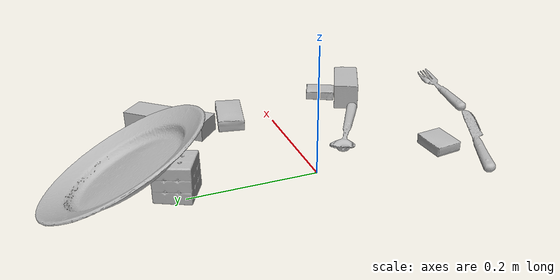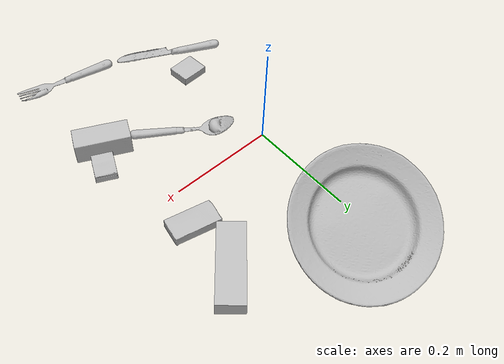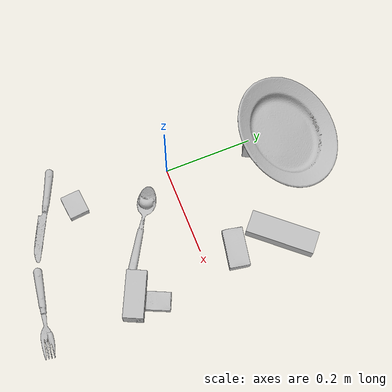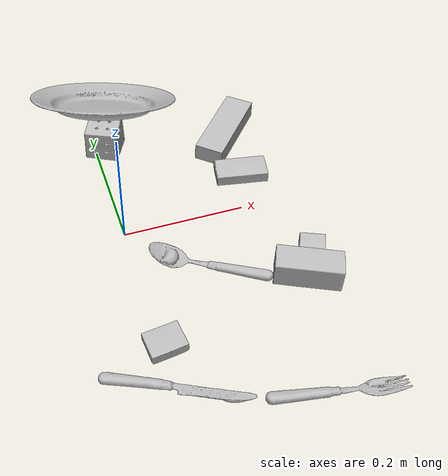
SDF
<sdf version="1.4">
  <world name="default">
    <light name="light1" type="point">
      <pose>0 0 1 0 0 0</pose>
      <diffuse>3 3 3 1</diffuse>
      <specular>3 3 3 1</specular>
    </light>
    <light name="light2" type="point">
      <pose>0 0.5 2 0 0 0</pose>
      <diffuse>1 1 1 1</diffuse>
      <specular>1 1 1 1</specular>
    </light>
    <light name="light3" type="point">
      <pose>0 0.5 2 0 0 0</pose>
      <diffuse>3 3 3 1</diffuse>
      <specular>3 3 3 1</specular>
    </light>
    <scene>
      <ambient>0.7 0.7 0.7</ambient>
    </scene>
    <model name="box11">
      <link name="link_box11">
        <collision name="default">
          <geometry>
            <mesh>
              <uri>model://pudding_box/collision_meshes/collision.obj</uri>
              <scale>0.5 0.5 0.5</scale>
            </mesh>
          </geometry>
          <surface>
            <friction>
              <ode>
                <mu>0.5</mu>
                <mu2>0.5</mu2>
              </ode>
            </friction>
          <contact>
        <ode>
            <max_vel>0</max_vel>
            <min_depth>0.0001</min_depth>
            <kp>1e8</kp>
        </ode>
    </contact></surface>
        </collision>
        <visual name="default">
          <geometry>
            <mesh>
              <uri>model://pudding_box/visual_meshes/visual.dae</uri>
              <scale>0.5 0.5 0.5</scale>
            </mesh>
          </geometry>
        </visual>
        <inertial>
          <mass>0.05641884729266167</mass>
          <pose>0.00024474109522998333 0.000403394311433658 -0.00025944141088984907 0.005213101771016666 -0.006603799659696515 0.020079828883224148</pose>
          <inertia>
            <ixx>1.5944652e-05</ixx>
            <iyy>1.0727675e-05</iyy>
            <izz>2.3546443e-05</izz>
            <ixy>0</ixy>
            <ixz>0</ixz>
            <iyz>0</iyz>
          </inertia>
        </inertial>
      </link>
      <pose>0.0033720319624990225 -0.21708613634109497 0.009862902574241161 0.02234852671509294 -0.011391733523686795 -1.478145894905893</pose>
    </model>
    <model name="box12">
      <link name="link_box12">
        <collision name="default">
          <geometry>
            <mesh>
              <uri>model://wood_block/collision_meshes/collision.obj</uri>
              <scale>0.5 0.5 0.5</scale>
            </mesh>
          </geometry>
          <surface>
            <friction>
              <ode>
                <mu>0.5</mu>
                <mu2>0.5</mu2>
              </ode>
            </friction>
          <contact>
        <ode>
            <max_vel>0</max_vel>
            <min_depth>0.0001</min_depth>
            <kp>1e8</kp>
        </ode>
    </contact></surface>
        </collision>
        <visual name="default">
          <geometry>
            <mesh>
              <uri>model://wood_block/visual_meshes/visual.dae</uri>
              <scale>0.5 0.5 0.5</scale>
            </mesh>
          </geometry>
        </visual>
        <inertial>
          <mass>0.1445801854133606</mass>
          <pose>-2.906657982748584e-06 -0.000285404734313488 0.00013204291462898254 -0.052208162951624955 -0.0051926954609686745 -0.006861377578377277</pose>
          <inertia>
            <ixx>4.836754e-05</ixx>
            <iyy>0.0001527931</iyy>
            <izz>0.00015222155</izz>
            <ixy>0</ixy>
            <ixz>0</ixz>
            <iyz>0</iyz>
          </inertia>
        </inertial>
      </link>
      <pose>0.244312584400177 -0.16605478525161743 0.022629264742136 -0.005208484346942467 0.0057187131873377315 -0.4402943496212677</pose>
    </model>
    <model name="box13">
      <link name="link_box13">
        <collision name="default">
          <geometry>
            <mesh>
              <uri>model://sugar_box/collision_meshes/collision.obj</uri>
              <scale>0.5 0.5 0.5</scale>
            </mesh>
          </geometry>
          <surface>
            <friction>
              <ode>
                <mu>0.5</mu>
                <mu2>0.5</mu2>
              </ode>
            </friction>
          <contact>
        <ode>
            <max_vel>0</max_vel>
            <min_depth>0.0001</min_depth>
            <kp>1e8</kp>
        </ode>
    </contact></surface>
        </collision>
        <visual name="default">
          <geometry>
            <mesh>
              <uri>model://sugar_box/visual_meshes/visual.dae</uri>
              <scale>0.5 0.5 0.5</scale>
            </mesh>
          </geometry>
        </visual>
        <inertial>
          <mass>0.1187032163143158</mass>
          <pose>0.0005171863595023751 1.924554817378521e-05 -0.00018182402709499002 -0.0004046259512710581 0.0010506635216588768 0.002615378556274426</pose>
          <inertia>
            <ixx>2.4725794e-05</ixx>
            <iyy>7.991886e-05</iyy>
            <izz>9.567241e-05</izz>
            <ixy>0</ixy>
            <ixz>0</ixz>
            <iyz>0</iyz>
          </inertia>
        </inertial>
      </link>
      <pose>0.22500395774841309 0.07174714654684067 0.011399303562939167 0.000774887179638185 -0.023433145629032894 -0.1998013896401678</pose>
    </model>
    <model name="box21">
      <link name="link_box21">
        <collision name="default">
          <geometry>
            <mesh>
              <uri>model://jenga/collision_meshes/collision.obj</uri>
              <scale>1.0 1.0 1.0</scale>
            </mesh>
          </geometry>
          <surface>
            <friction>
              <ode>
                <mu>0.5</mu>
                <mu2>0.5</mu2>
              </ode>
            </friction>
          <contact>
        <ode>
            <max_vel>0</max_vel>
            <min_depth>0.0001</min_depth>
            <kp>1e8</kp>
        </ode>
    </contact></surface>
        </collision>
        <visual name="default">
          <geometry>
            <mesh>
              <uri>model://jenga/visual_meshes/visual.dae</uri>
              <scale>1.0 1.0 1.0</scale>
            </mesh>
          </geometry>
        </visual>
        <inertial>
          <mass>0.20898528397083282</mass>
          <pose>-2.502855807051674e-07 -0.00010250010382151231 -4.092339804628864e-05 0.0 -7.342154049184251e-07 0.0</pose>
          <inertia>
            <ixx>5.7831294e-05</ixx>
            <iyy>0.0003918633</iyy>
            <izz>0.00041834736</izz>
            <ixy>0</ixy>
            <ixz>0</ixz>
            <iyz>0</iyz>
          </inertia>
        </inertial>
      </link>
      <pose>0.23266902565956116 0.17647463083267212 0.01499999687075615 -6.576227509029871e-09 -8.86422711490734e-10 -2.2944876772374707</pose>
    </model>
    <model name="box22">
      <link name="link_box22">
        <collision name="default">
          <geometry>
            <mesh>
              <uri>model://rubiks_cube/collision_meshes/collision.obj</uri>
              <scale>1.0 1.0 1.0</scale>
            </mesh>
          </geometry>
          <surface>
            <friction>
              <ode>
                <mu>0.5</mu>
                <mu2>0.5</mu2>
              </ode>
            </friction>
          <contact>
        <ode>
            <max_vel>0</max_vel>
            <min_depth>0.0001</min_depth>
            <kp>1e8</kp>
        </ode>
    </contact></surface>
        </collision>
        <visual name="default">
          <geometry>
            <mesh>
              <uri>model://rubiks_cube/visual_meshes/visual.dae</uri>
              <scale>1.0 1.0 1.0</scale>
            </mesh>
          </geometry>
        </visual>
        <inertial>
          <mass>0.28698527812957764</mass>
          <pose>2.6721041649580002e-05 5.2569666877388954e-05 -7.2643156272533815e-06 -0.05467256881712973 -0.09813902151902686 -0.034455808755049874</pose>
          <inertia>
            <ixx>0.00015857864</ixx>
            <iyy>0.00015783912</iyy>
            <izz>0.00015989273</izz>
            <ixy>0</ixy>
            <ixz>0</ixz>
            <iyz>0</iyz>
          </inertia>
        </inertial>
      </link>
      <pose>0.017894180491566658 0.20775067806243896 0.028679024428129196 1.624878965857694e-06 -1.2698486176618527e-06 -2.0030197676334462</pose>
    </model>
    <model name="box23">
      <link name="link_box23">
        <collision name="default">
          <geometry>
            <mesh>
              <uri>model://cracker_box/collision_meshes/collision.obj</uri>
              <scale>0.25 0.25 0.25</scale>
            </mesh>
          </geometry>
          <surface>
            <friction>
              <ode>
                <mu>0.5</mu>
                <mu2>0.5</mu2>
              </ode>
            </friction>
          <contact>
        <ode>
            <max_vel>0</max_vel>
            <min_depth>0.0001</min_depth>
            <kp>1e8</kp>
        </ode>
    </contact></surface>
        </collision>
        <visual name="default">
          <geometry>
            <mesh>
              <uri>model://cracker_box/visual_meshes/visual.dae</uri>
              <scale>0.25 0.25 0.25</scale>
            </mesh>
          </geometry>
        </visual>
        <inertial>
          <mass>0.04468085244297981</mass>
          <pose>0.00023660414444748312 6.358561222441494e-05 -0.0004257383698131889 -0.0003162076226327385 -0.011106488669128663 0.0025467943033026423</pose>
          <inertia>
            <ixx>7.10301e-06</ixx>
            <iyy>1.1728463e-05</iyy>
            <izz>1.6737597e-05</izz>
            <ixy>0</ixy>
            <ixz>0</ixz>
            <iyz>0</iyz>
          </inertia>
        </inertial>
      </link>
      <pose>0.2704879939556122 -0.1243748888373375 0.009120446629822254 -0.011788078944542868 -0.007367054934595782 1.1391944921631696</pose>
    </model>
    <model name="plate1">
      <link name="link_plate1">
        <collision name="default">
          <geometry>
            <mesh>
              <uri>model://plate/collision_meshes/collision.obj</uri>
              <scale>1.0 1.0 1.0</scale>
            </mesh>
          </geometry>
          <surface>
            <friction>
              <ode>
                <mu>0.5</mu>
                <mu2>0.5</mu2>
              </ode>
            </friction>
          <contact>
        <ode>
            <max_vel>0</max_vel>
            <min_depth>0.0001</min_depth>
            <kp>1e8</kp>
        </ode>
    </contact></surface>
        </collision>
        <visual name="default">
          <geometry>
            <mesh>
              <uri>model://plate/visual_meshes/visual.dae</uri>
              <scale>1.0 1.0 1.0</scale>
            </mesh>
          </geometry>
        </visual>
        <inertial>
          <mass>0.20184239745140076</mass>
          <pose>-0.0006044648471288383 0.00027825962752103806 -0.0010561983799561858 0.0022188105697194356 -0.003225466439192432 0.4526020757977656</pose>
          <inertia>
            <ixx>0.00094422296</ixx>
            <iyy>0.00093519164</iyy>
            <izz>0.0018467589</izz>
            <ixy>0</ixy>
            <ixz>0</ixz>
            <iyz>0</iyz>
          </inertia>
        </inertial>
      </link>
      <pose>0.03328654542565346 0.27325326204299927 0.05137186124920845 -0.46521507876074947 0.0027241679601852317 -0.37713403109201754</pose>
    </model>
    <model name="silverware1">
      <link name="link_silverware1">
        <collision name="default">
          <geometry>
            <mesh>
              <uri>model://fork/collision_meshes/collision.obj</uri>
              <scale>1.0 1.0 1.0</scale>
            </mesh>
          </geometry>
          <surface>
            <friction>
              <ode>
                <mu>0.5</mu>
                <mu2>0.5</mu2>
              </ode>
            </friction>
          <contact>
        <ode>
            <max_vel>0</max_vel>
            <min_depth>0.0001</min_depth>
            <kp>1e8</kp>
        </ode>
    </contact></surface>
        </collision>
        <visual name="default">
          <geometry>
            <mesh>
              <uri>model://fork/visual_meshes/visual.dae</uri>
              <scale>1.0 1.0 1.0</scale>
            </mesh>
          </geometry>
        </visual>
        <inertial>
          <mass>0.03151825815439224</mass>
          <pose>-0.029570046812295914 0.00046588233090005815 0.0003218861820641905 -0.013550990610422763 -0.010977834578584837 0.014453900606944525</pose>
          <inertia>
            <ixx>1.1048933e-06</ixx>
            <iyy>8.2285114e-05</iyy>
            <izz>8.2779305e-05</izz>
            <ixy>0</ixy>
            <ixz>0</ixz>
            <iyz>0</iyz>
          </inertia>
        </inertial>
      </link>
      <pose>0.20250380039215088 -0.3576599657535553 0.005696475505828857 -0.1787321086273344 0.025179004112972418 -0.18846498903374165</pose>
    </model>
    <model name="silverware2">
      <link name="link_silverware2">
        <collision name="default">
          <geometry>
            <mesh>
              <uri>model://spoon/collision_meshes/collision.obj</uri>
              <scale>1.0 1.0 1.0</scale>
            </mesh>
          </geometry>
          <surface>
            <friction>
              <ode>
                <mu>0.5</mu>
                <mu2>0.5</mu2>
              </ode>
            </friction>
          <contact>
        <ode>
            <max_vel>0</max_vel>
            <min_depth>0.0001</min_depth>
            <kp>1e8</kp>
        </ode>
    </contact></surface>
        </collision>
        <visual name="default">
          <geometry>
            <mesh>
              <uri>model://spoon/visual_meshes/visual.dae</uri>
              <scale>1.0 1.0 1.0</scale>
            </mesh>
          </geometry>
        </visual>
        <inertial>
          <mass>0.04083608463406563</mass>
          <pose>-0.005526324734091759 -0.001603417913429439 -0.0007271658978424966 0.03521537575369321 -0.03906582415196765 0.006150608891198343</pose>
          <inertia>
            <ixx>2.2713682e-06</ixx>
            <iyy>0.0001553799</iyy>
            <izz>0.0001565001</izz>
            <ixy>0</ixy>
            <ixz>0</ixz>
            <iyz>0</iyz>
          </inertia>
        </inertial>
      </link>
      <pose>0.10736337304115295 -0.10449891537427902 0.008385266177356243 0.006731724937271095 0.02689299677191255 2.5760289361841218</pose>
    </model>
    <model name="silverware3">
      <link name="link_silverware3">
        <collision name="default">
          <geometry>
            <mesh>
              <uri>model://knife/collision_meshes/collision.obj</uri>
              <scale>1.0 1.0 1.0</scale>
            </mesh>
          </geometry>
          <surface>
            <friction>
              <ode>
                <mu>0.5</mu>
                <mu2>0.5</mu2>
              </ode>
            </friction>
          <contact>
        <ode>
            <max_vel>0</max_vel>
            <min_depth>0.0001</min_depth>
            <kp>1e8</kp>
        </ode>
    </contact></surface>
        </collision>
        <visual name="default">
          <geometry>
            <mesh>
              <uri>model://knife/visual_meshes/visual.dae</uri>
              <scale>1.0 1.0 1.0</scale>
            </mesh>
          </geometry>
        </visual>
        <inertial>
          <mass>0.024411516264081</mass>
          <pose>-0.023785248398780823 0.0015275123296305537 5.062021955382079e-05 0.07305335097392199 0.01724841144103926 -0.007409823891069756</pose>
          <inertia>
            <ixx>6.9289786e-07</ixx>
            <iyy>9.37851e-05</iyy>
            <izz>9.400826e-05</izz>
            <ixy>0</ixy>
            <ixz>0</ixz>
            <iyz>0</iyz>
          </inertia>
        </inertial>
      </link>
      <pose>-0.0021981485188007355 -0.28942176699638367 0.008136812597513199 -0.2817478066313378 -0.008871643466605024 -0.4531921912320274</pose>
    </model>
  <physics type="ode">
      <max_contacts>50</max_contacts>
      <ode>
        <solver>
          <type>quick</type>
          <iters>75</iters>
        </solver>
        <constraints>
          <contact_max_correcting_vel>0</contact_max_correcting_vel>
          <contact_surface_layer>0</contact_surface_layer>
        </constraints>
      </ode>
    </physics></world>
</sdf>
